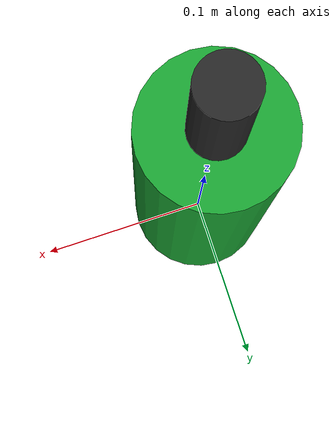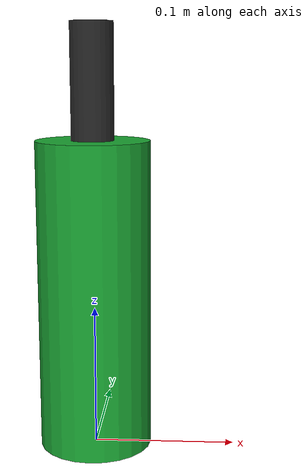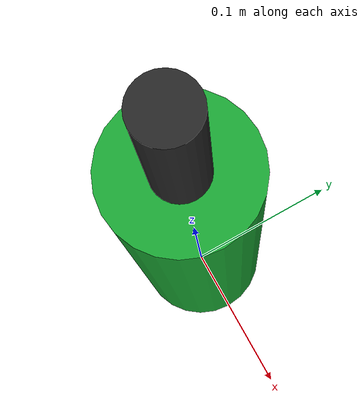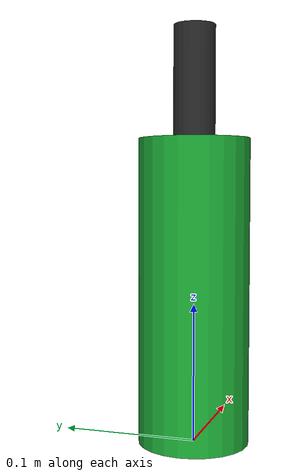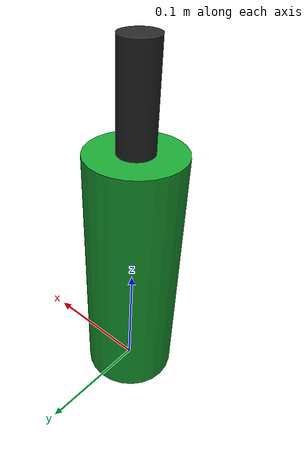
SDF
<?xml version="1.0" ?>
<!-- GENERATED by bartender_gazebo/scripts/make_bartender_scene.py; standard debug bottle.
     Edit the generator, not this file. Colors are debug aids only. -->
<sdf version="1.9">
  <model name="debug_bottle_green">
    <!-- Link origin is the centre of the bottle's base, like the whiskey
         and cola models, so a standing pose is always z = table top. -->
    <link name="body">
      <inertial>
        <pose>0 0 0.11 0 0 0</pose>
        <mass>0.6</mass>
        <inertia>
          <ixx>2.660000e-03</ixx>
          <iyy>2.660000e-03</iyy>
          <izz>4.800000e-04</izz>
          <ixy>0</ixy>
          <ixz>0</ixz>
          <iyz>0</iyz>
        </inertia>
      </inertial>
      <collision name="body_collision">
        <pose>0 0 0.11 0 0 0</pose>
        <geometry>
          <cylinder>
            <radius>0.04</radius>
            <length>0.22</length>
          </cylinder>
        </geometry>
        <surface>
          <friction>
            <ode>
              <mu>0.9</mu>
              <mu2>0.9</mu2>
            </ode>
          </friction>
        </surface>
      </collision>
      <visual name="body_visual">
        <pose>0 0 0.11 0 0 0</pose>
        <geometry>
          <cylinder>
            <radius>0.04</radius>
            <length>0.22</length>
          </cylinder>
        </geometry>
        <material>
          <ambient>0.1 0.65 0.2 1</ambient>
          <diffuse>0.1 0.65 0.2 1</diffuse>
          <specular>0.2 0.2 0.2 0.3</specular>
        </material>
      </visual>
      <collision name="neck_collision">
        <pose>0 0 0.26 0 0 0</pose>
        <geometry>
          <cylinder>
            <radius>0.015</radius>
            <length>0.08</length>
          </cylinder>
        </geometry>
        <surface>
          <friction>
            <ode>
              <mu>0.9</mu>
              <mu2>0.9</mu2>
            </ode>
          </friction>
        </surface>
      </collision>
      <visual name="neck_visual">
        <pose>0 0 0.26 0 0 0</pose>
        <geometry>
          <cylinder>
            <radius>0.015</radius>
            <length>0.08</length>
          </cylinder>
        </geometry>
        <material>
          <ambient>0.15 0.15 0.15 1</ambient>
          <diffuse>0.15 0.15 0.15 1</diffuse>
          <specular>0.3 0.3 0.3 0.3</specular>
        </material>
      </visual>
    </link>
  </model>
</sdf>
